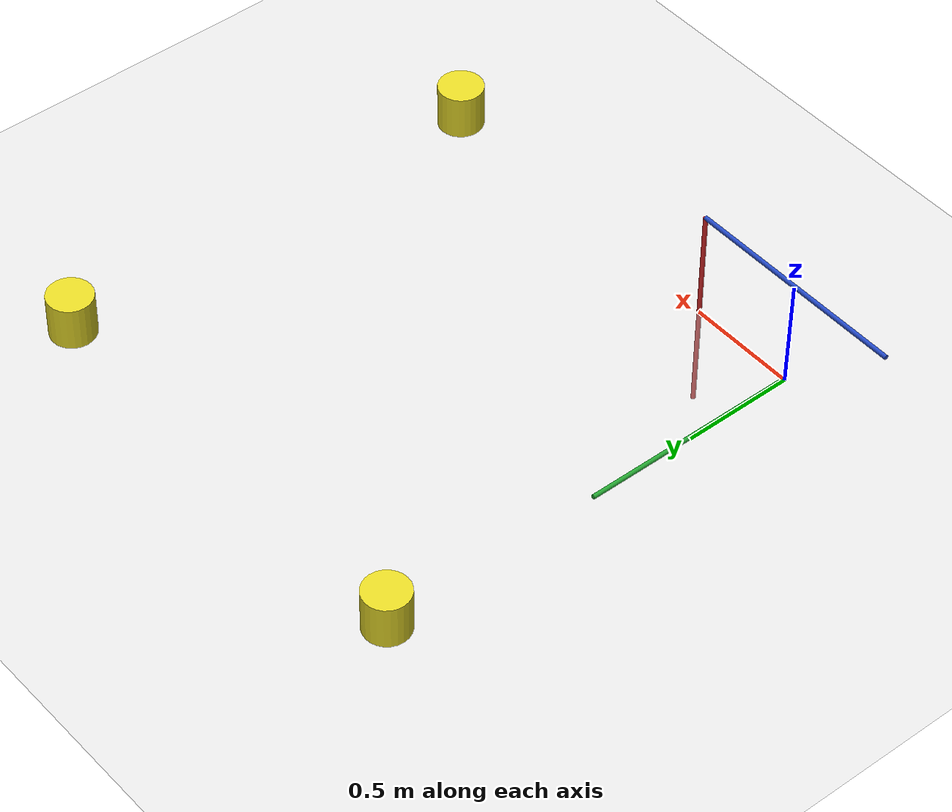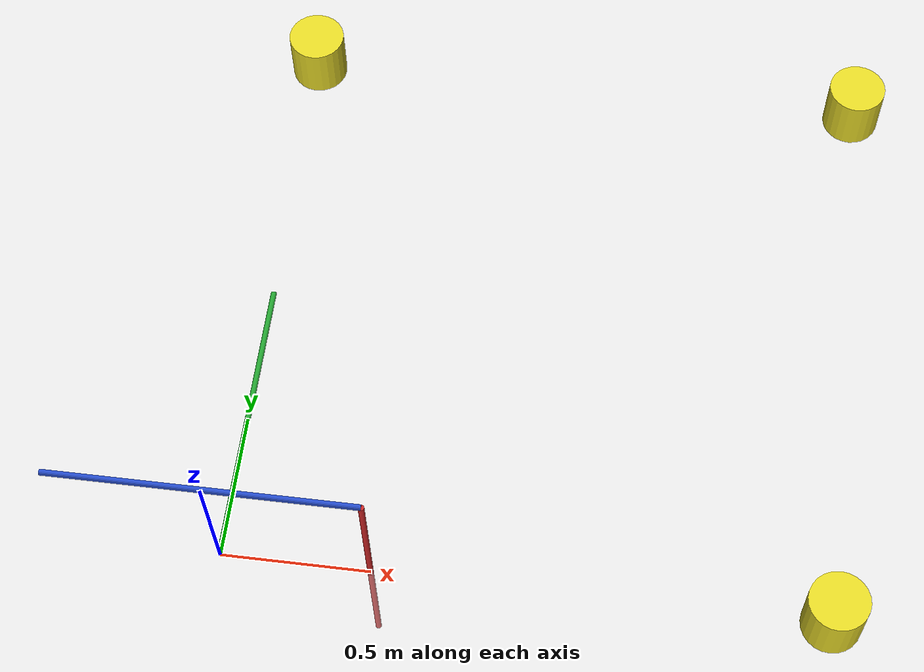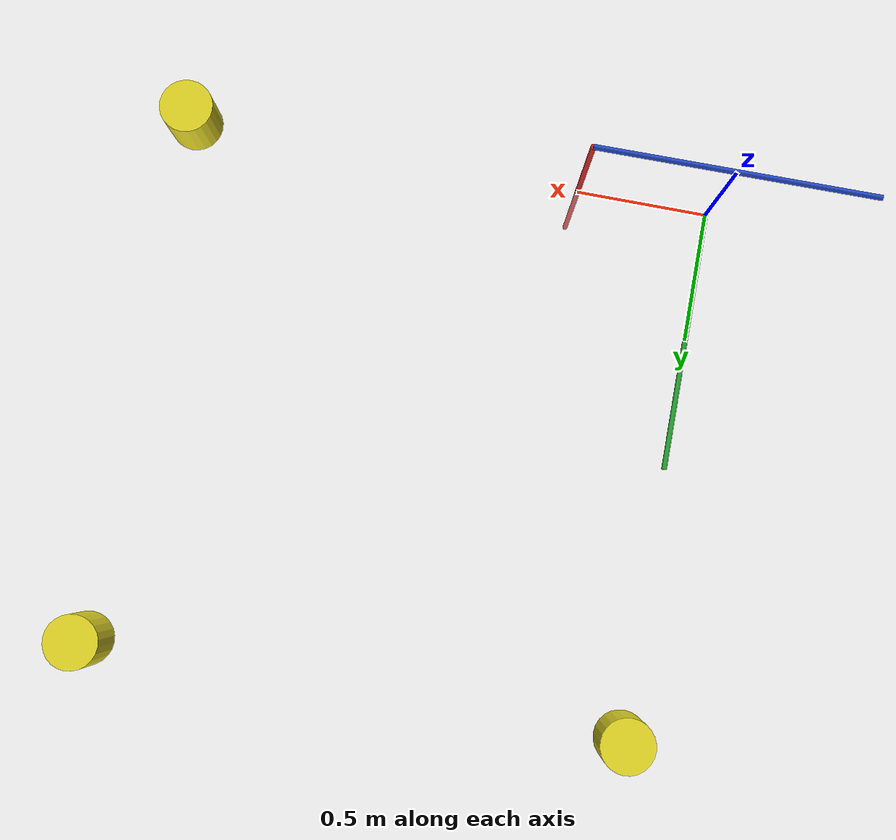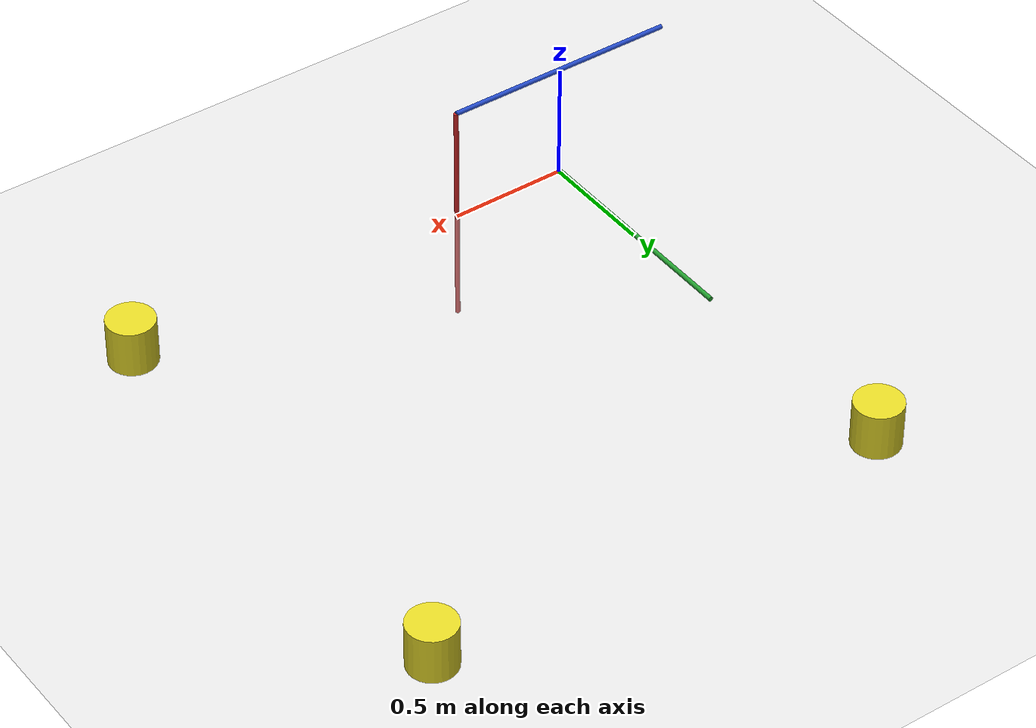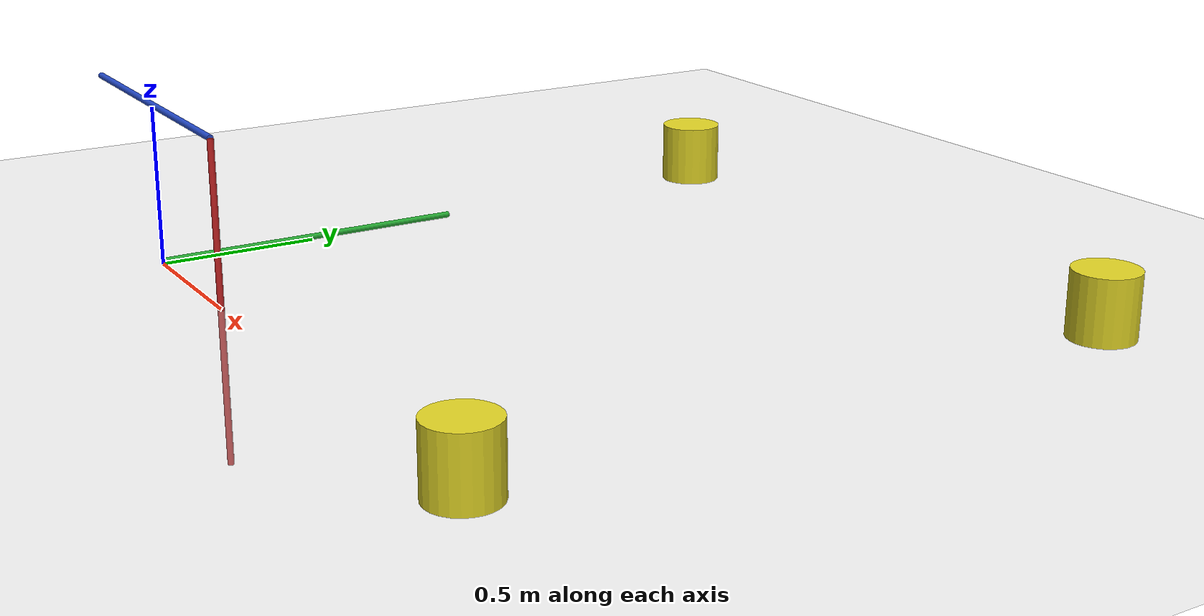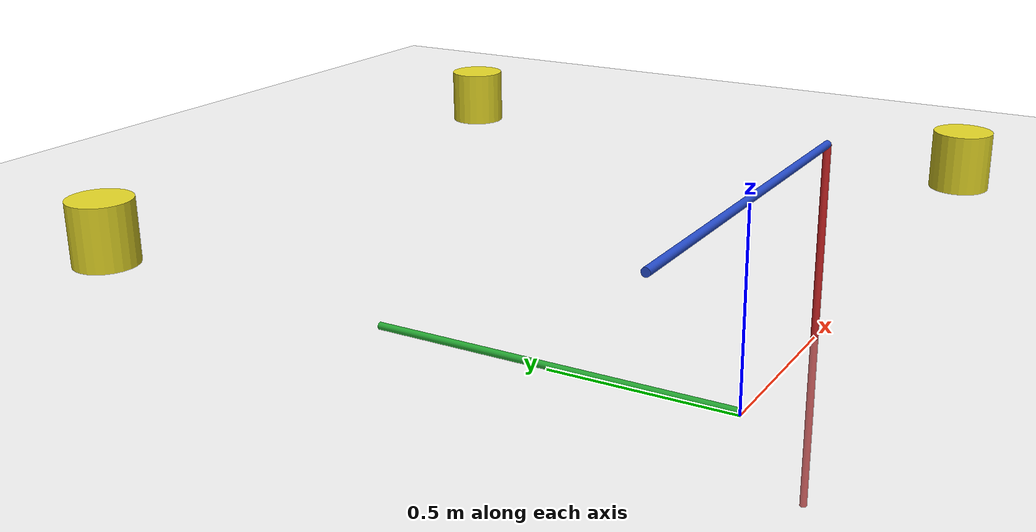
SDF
<?xml version="1.0" ?>
<sdf version="1.5">
  <world name="empty_world">

    <!-- 全局设置 -->
    <physics name='default_physics' default='0' type='ode'>
      <gravity>0 0 -9.8066</gravity>
      <ode>
        <solver>
          <type>quick</type>
          <iters>10</iters>
          <sor>1.3</sor>
          <use_dynamic_moi_rescaling>0</use_dynamic_moi_rescaling>
        </solver>
        <constraints>
          <cfm>0</cfm>
          <erp>0.2</erp>
          <contact_max_correcting_vel>100</contact_max_correcting_vel>
          <contact_surface_layer>0.001</contact_surface_layer>
        </constraints>
      </ode>
      <max_step_size>0.002</max_step_size>
      <real_time_factor>1</real_time_factor>
      <real_time_update_rate>500</real_time_update_rate>
    </physics>

    <!-- 场景设置 -->
    <scene>
      <ambient>0.4 0.4 0.4 1</ambient>
      <background>0.7 0.7 0.7 1</background>
      <shadows>true</shadows>
    </scene>

    <!-- 太阳光源 -->
    <light type="directional" name="sun">
      <cast_shadows>true</cast_shadows>
      <pose>0 0 10 0 0 0</pose>
      <diffuse>0.8 0.8 0.8 1</diffuse>
      <specular>0.2 0.2 0.2 1</specular>
      <attenuation>
        <range>1000</range>
        <constant>0.9</constant>
        <linear>0.01</linear>
        <quadratic>0.001</quadratic>
      </attenuation>
      <direction>-0.5 0.1 -0.9</direction>
    </light>

    <!-- 地面 -->
    <model name="ground_plane">
      <static>true</static>
      <link name="link">
        <collision name="collision">
          <geometry>
            <plane>
              <normal>0 0 1</normal>
              <size>100 100</size>
            </plane>
          </geometry>
          <surface>
            <contact>
              <collide_bitmask>65535</collide_bitmask>
              <ode/>
            </contact>
            <friction>
              <ode>
                <mu>100</mu>
                <mu2>50</mu2>
              </ode>
            </friction>
          </surface>
        </collision>
        <visual name="visual">
          <cast_shadows>false</cast_shadows>
          <geometry>
            <plane>
              <normal>0 0 1</normal>
              <size>100 100</size>
            </plane>
          </geometry>
          <material>
            <script>
              <uri>file://media/materials/scripts/gazebo.material</uri>
              <name>Gazebo/Grey</name>
            </script>
          </material>
        </visual>
      </link>
    </model>

    <!-- 坐标系参考 -->
    <model name="coordinate_frame">
      <static>true</static>
      <pose>0 0 0.01 0 0 0</pose>
      <link name="link">
        <visual name="x_axis">
          <pose>0.5 0 0 0 0 0</pose>
          <geometry>
            <cylinder>
              <radius>0.01</radius>
              <length>1.0</length>
            </cylinder>
          </geometry>
          <material>
            <script>
              <uri>file://media/materials/scripts/gazebo.material</uri>
              <name>Gazebo/Red</name>
            </script>
          </material>
        </visual>
        <visual name="y_axis">
          <pose>0 0.5 0 1.5708 0 0</pose>
          <geometry>
            <cylinder>
              <radius>0.01</radius>
              <length>1.0</length>
            </cylinder>
          </geometry>
          <material>
            <script>
              <uri>file://media/materials/scripts/gazebo.material</uri>
              <name>Gazebo/Green</name>
            </script>
          </material>
        </visual>
        <visual name="z_axis">
          <pose>0 0 0.5 0 1.5708 0</pose>
          <geometry>
            <cylinder>
              <radius>0.01</radius>
              <length>1.0</length>
            </cylinder>
          </geometry>
          <material>
            <script>
              <uri>file://media/materials/scripts/gazebo.material</uri>
              <name>Gazebo/Blue</name>
            </script>
          </material>
        </visual>
      </link>
    </model>

    <!-- 航点标记 -->
    <model name="waypoint_1">
      <static>true</static>
      <pose>2 0 0.1 0 0 0</pose>
      <link name="link">
        <visual name="visual">
          <geometry>
            <cylinder>
              <radius>0.1</radius>
              <length>0.2</length>
            </cylinder>
          </geometry>
          <material>
            <script>
              <uri>file://media/materials/scripts/gazebo.material</uri>
              <name>Gazebo/Yellow</name>
            </script>
          </material>
        </visual>
      </link>
    </model>

    <model name="waypoint_2">
      <static>true</static>
      <pose>2 2 0.1 0 0 0</pose>
      <link name="link">
        <visual name="visual">
          <geometry>
            <cylinder>
              <radius>0.1</radius>
              <length>0.2</length>
            </cylinder>
          </geometry>
          <material>
            <script>
              <uri>file://media/materials/scripts/gazebo.material</uri>
              <name>Gazebo/Yellow</name>
            </script>
          </material>
        </visual>
      </link>
    </model>

    <model name="waypoint_3">
      <static>true</static>
      <pose>0 2 0.1 0 0 0</pose>
      <link name="link">
        <visual name="visual">
          <geometry>
            <cylinder>
              <radius>0.1</radius>
              <length>0.2</length>
            </cylinder>
          </geometry>
          <material>
            <script>
              <uri>file://media/materials/scripts/gazebo.material</uri>
              <name>Gazebo/Yellow</name>
            </script>
          </material>
        </visual>
      </link>
    </model>

    <!-- 世界设置 -->
    <gui fullscreen='0'>
      <camera name='user_camera'>
        <pose frame=''>5.46 -5.23 5.35 0 0.275643 2.356</pose>
        <view_controller>orbit</view_controller>
        <projection_type>perspective</projection_type>
      </camera>
    </gui>

    <!-- 插件设置 -->
    <plugin name="gazebo_ros_state" filename="libgazebo_ros_state.so">
      <ros_namespace>/gazebo</ros_namespace>
      <publish_frequency>50.0</publish_frequency>
    </plugin>

  </world>
</sdf>
